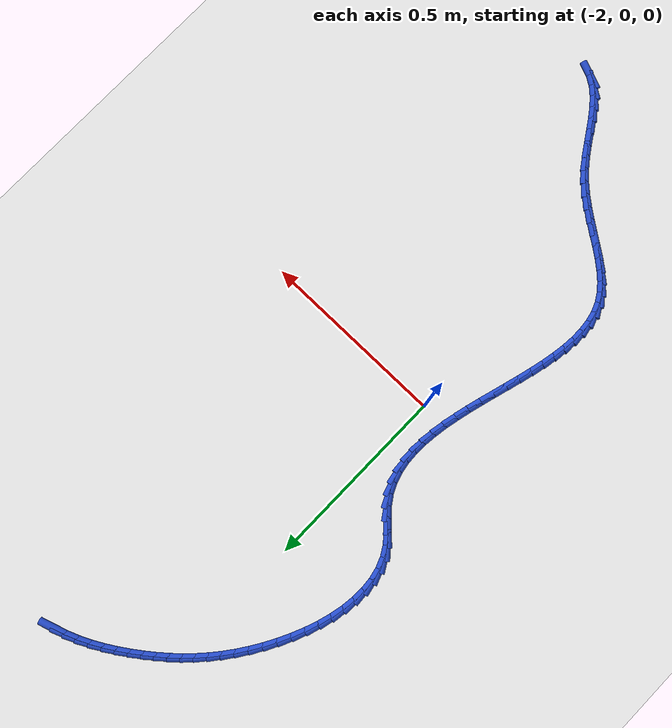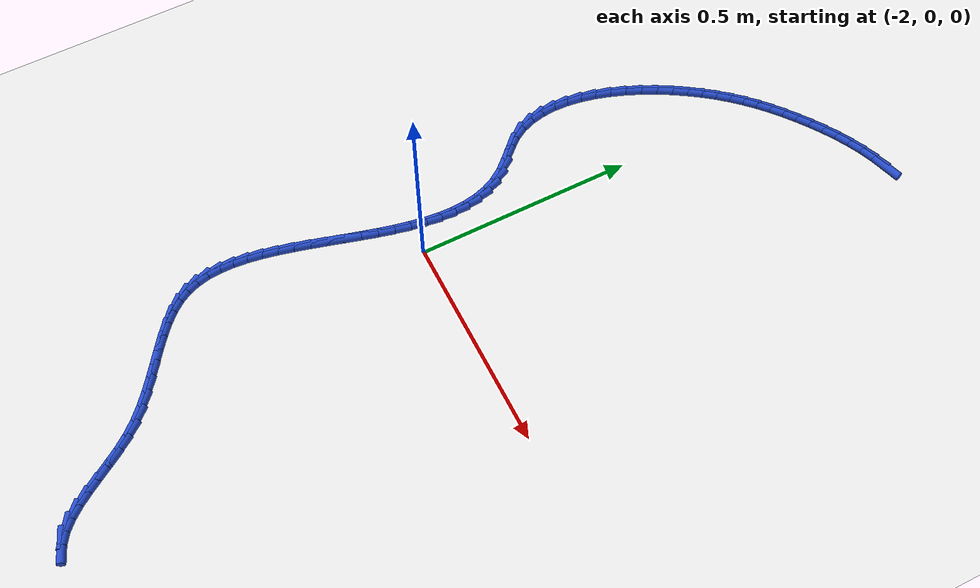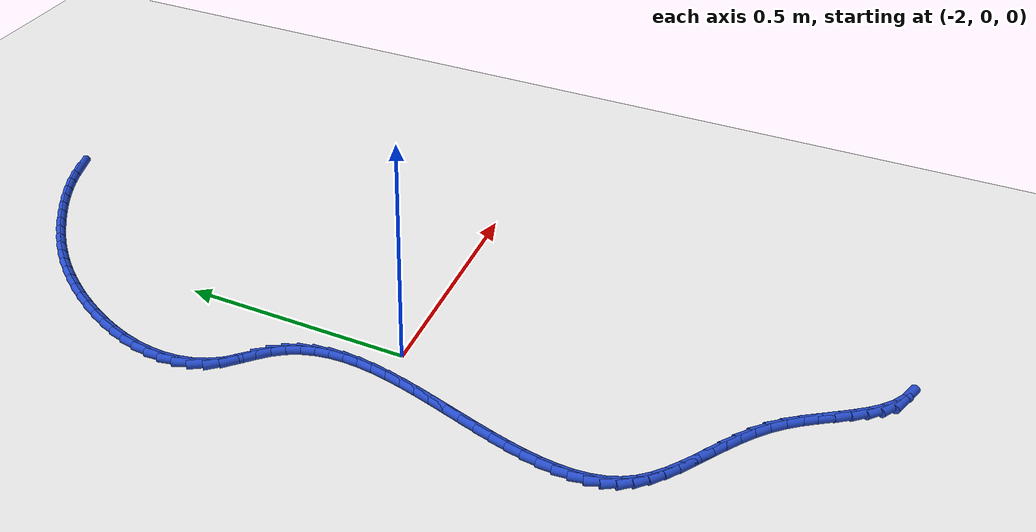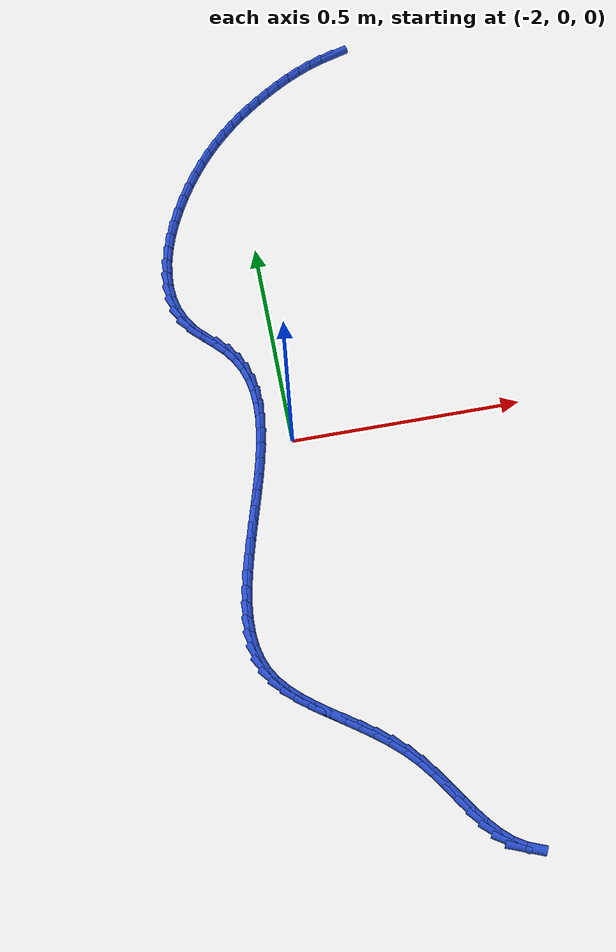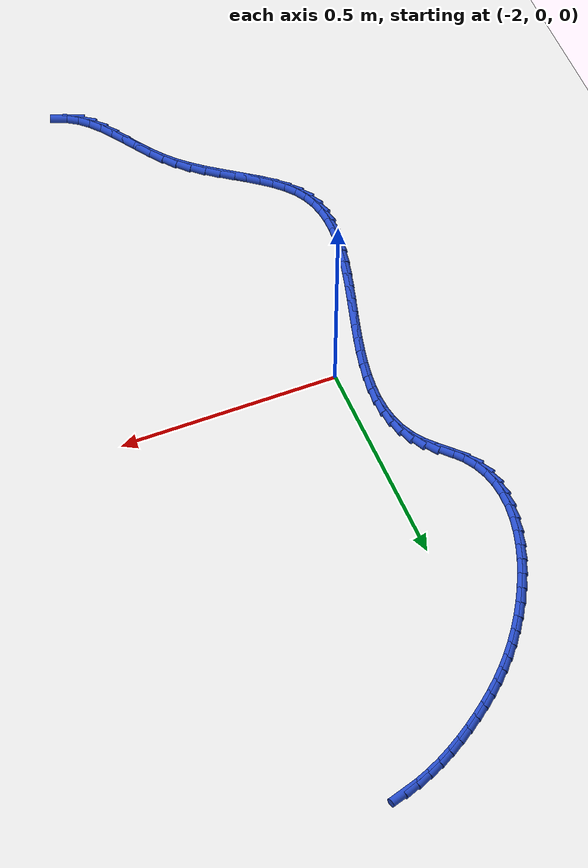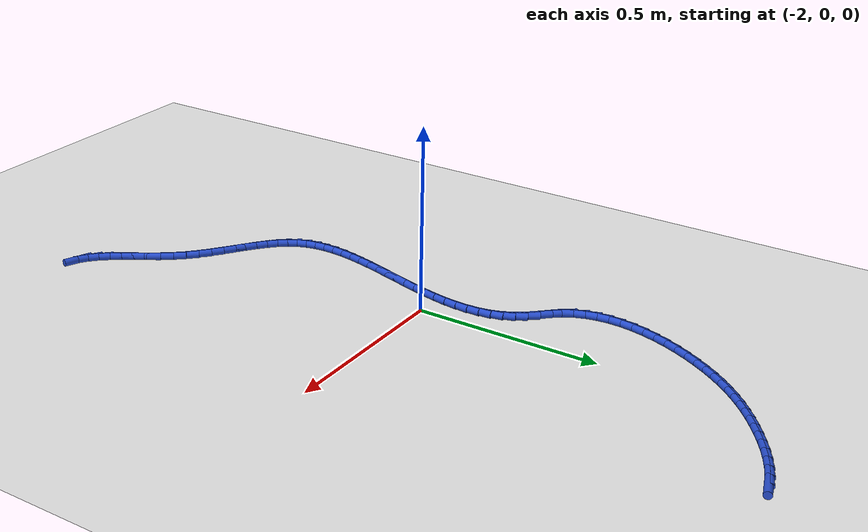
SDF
<sdf version="1.6">
 <world name="default">
  <model name="ground_plane">
   <static>1</static>
   <link name="link">
    <collision name="collision">
     <geometry><plane><normal>0 0 1</normal><size>100 100</size></plane></geometry>
     <surface><friction><ode><mu>100</mu><mu2>50</mu2></ode></friction></surface>
    </collision>
    <visual name="visual">
     <cast_shadows>0</cast_shadows>
     <geometry><plane><normal>0 0 1</normal><size>100 100</size></plane></geometry>
     <material>
      <script><uri>file://media/materials/scripts/gazebo.material</uri><name>Gazebo/WhiteGlow</name></script>
     </material>
    </visual>
   </link>
  </model>
  <model name="line">
   <link name="link_75">
    <pose>-1.722665146665327 1.0255204664261497 0.01 0 1.57 0.30716650345870583</pose>
    <collision name="collision">
     <geometry><cylinder><radius>0.01</radius><length>0.08</length></cylinder></geometry>
    </collision>
    <visual name="visual">
     <material>
      <script><name>Gazebo/Blue</name><uri>file://media/materials/scripts/gazebo.material</uri></script>
     </material>
     <geometry><cylinder><radius>0.01</radius><length>0.08</length></cylinder></geometry>
    </visual>
   </link>
   <link name="link_76">
    <pose>-1.7539561186742578 1.0155947795721028 0.01 0 1.57 0.3816026447308848</pose>
    <collision name="collision">
     <geometry><cylinder><radius>0.01</radius><length>0.08</length></cylinder></geometry>
    </collision>
    <visual name="visual">
     <material>
      <script><name>Gazebo/Blue</name><uri>file://media/materials/scripts/gazebo.material</uri></script>
     </material>
     <geometry><cylinder><radius>0.01</radius><length>0.08</length></cylinder></geometry>
    </visual>
   </link>
   <link name="link_77">
    <pose>-1.7847114089837033 1.0032535356813657 0.01 0 1.57 0.4462764927679804</pose>
    <collision name="collision">
     <geometry><cylinder><radius>0.01</radius><length>0.08</length></cylinder></geometry>
    </collision>
    <visual name="visual">
     <material>
      <script><name>Gazebo/Blue</name><uri>file://media/materials/scripts/gazebo.material</uri></script>
     </material>
     <geometry><cylinder><radius>0.01</radius><length>0.08</length></cylinder></geometry>
    </visual>
   </link>
   <link name="link_78">
    <pose>-1.814827324672753 0.9888439454595546 0.01 0 1.57 0.5022067671707312</pose>
    <collision name="collision">
     <geometry><cylinder><radius>0.01</radius><length>0.08</length></cylinder></geometry>
    </collision>
    <visual name="visual">
     <material>
      <script><name>Gazebo/Blue</name><uri>file://media/materials/scripts/gazebo.material</uri></script>
     </material>
     <geometry><cylinder><radius>0.01</radius><length>0.08</length></cylinder></geometry>
    </visual>
   </link>
   <link name="link_79">
    <pose>-1.8442001728204944 0.972713219612286 0.01 0 1.57 0.5503861017732643</pose>
    <collision name="collision">
     <geometry><cylinder><radius>0.01</radius><length>0.08</length></cylinder></geometry>
    </collision>
    <visual name="visual">
     <material>
      <script><name>Gazebo/Blue</name><uri>file://media/materials/scripts/gazebo.material</uri></script>
     </material>
     <geometry><cylinder><radius>0.01</radius><length>0.08</length></cylinder></geometry>
    </visual>
   </link>
   <link name="link_80">
    <pose>-1.8727262605060155 0.9552085688451755 0.01 0 1.57 0.5916992867368625</pose>
    <collision name="collision">
     <geometry><cylinder><radius>0.01</radius><length>0.08</length></cylinder></geometry>
    </collision>
    <visual name="visual">
     <material>
      <script><name>Gazebo/Blue</name><uri>file://media/materials/scripts/gazebo.material</uri></script>
     </material>
     <geometry><cylinder><radius>0.01</radius><length>0.08</length></cylinder></geometry>
    </visual>
   </link>
   <link name="link_81">
    <pose>-1.9003018948084052 0.9366772038638402 0.01 0 1.57 0.6269977439988782</pose>
    <collision name="collision">
     <geometry><cylinder><radius>0.01</radius><length>0.08</length></cylinder></geometry>
    </collision>
    <visual name="visual">
     <material>
      <script><name>Gazebo/Blue</name><uri>file://media/materials/scripts/gazebo.material</uri></script>
     </material>
     <geometry><cylinder><radius>0.01</radius><length>0.08</length></cylinder></geometry>
    </visual>
   </link>
   <link name="link_82">
    <pose>-1.9268252356797597 0.9174603410933847 0.01 0 1.57 0.6608972028955824</pose>
    <collision name="collision">
     <geometry><cylinder><radius>0.01</radius><length>0.08</length></cylinder></geometry>
    </collision>
    <visual name="visual">
     <material>
      <script><name>Gazebo/Blue</name><uri>file://media/materials/scripts/gazebo.material</uri></script>
     </material>
     <geometry><cylinder><radius>0.01</radius><length>0.08</length></cylinder></geometry>
    </visual>
   </link>
   <link name="link_83">
    <pose>-1.9522613865164233 0.8976826263781983 0.01 0 1.57 0.6984580550411562</pose>
    <collision name="collision">
     <geometry><cylinder><radius>0.01</radius><length>0.08</length></cylinder></geometry>
    </collision>
    <visual name="visual">
     <material>
      <script><name>Gazebo/Blue</name><uri>file://media/materials/scripts/gazebo.material</uri></script>
     </material>
     <geometry><cylinder><radius>0.01</radius><length>0.08</length></cylinder></geometry>
    </visual>
   </link>
   <link name="link_84">
    <pose>-1.9766595790859884 0.8771965395511918 0.01 0 1.57 0.739521287938739</pose>
    <collision name="collision">
     <geometry><cylinder><radius>0.01</radius><length>0.08</length></cylinder></geometry>
    </collision>
    <visual name="visual">
     <material>
      <script><name>Gazebo/Blue</name><uri>file://media/materials/scripts/gazebo.material</uri></script>
     </material>
     <geometry><cylinder><radius>0.01</radius><length>0.08</length></cylinder></geometry>
    </visual>
   </link>
   <link name="link_85">
    <pose>-2.0000743913646652 0.8558372647785014 0.01 0 1.57 0.7834212294628782</pose>
    <collision name="collision">
     <geometry><cylinder><radius>0.01</radius><length>0.08</length></cylinder></geometry>
    </collision>
    <visual name="visual">
     <material>
      <script><name>Gazebo/Blue</name><uri>file://media/materials/scripts/gazebo.material</uri></script>
     </material>
     <geometry><cylinder><radius>0.01</radius><length>0.08</length></cylinder></geometry>
    </visual>
   </link>
   <link name="link_86">
    <pose>-2.0225604013286613 0.8334399862262636 0.01 0 1.57 0.8293474978991886</pose>
    <collision name="collision">
     <geometry><cylinder><radius>0.01</radius><length>0.08</length></cylinder></geometry>
    </collision>
    <visual name="visual">
     <material>
      <script><name>Gazebo/Blue</name><uri>file://media/materials/scripts/gazebo.material</uri></script>
     </material>
     <geometry><cylinder><radius>0.01</radius><length>0.08</length></cylinder></geometry>
    </visual>
   </link>
   <link name="link_87">
    <pose>-2.0441721869541865 0.8098398880606145 0.01 0 1.57 0.8763962838934419</pose>
    <collision name="collision">
     <geometry><cylinder><radius>0.01</radius><length>0.08</length></cylinder></geometry>
    </collision>
    <visual name="visual">
     <material>
      <script><name>Gazebo/Blue</name><uri>file://media/materials/scripts/gazebo.material</uri></script>
     </material>
     <geometry><cylinder><radius>0.01</radius><length>0.08</length></cylinder></geometry>
    </visual>
   </link>
   <link name="link_88">
    <pose>-2.0649643262174475 0.7848721544476905 0.01 0 1.57 0.9236360238138938</pose>
    <collision name="collision">
     <geometry><cylinder><radius>0.01</radius><length>0.08</length></cylinder></geometry>
    </collision>
    <visual name="visual">
     <material>
      <script><name>Gazebo/Blue</name><uri>file://media/materials/scripts/gazebo.material</uri></script>
     </material>
     <geometry><cylinder><radius>0.01</radius><length>0.08</length></cylinder></geometry>
    </visual>
   </link>
   <link name="link_89">
    <pose>-2.084991397094655 0.7583719695536281 0.01 0 1.57 0.9701765728772763</pose>
    <collision name="collision">
     <geometry><cylinder><radius>0.01</radius><length>0.08</length></cylinder></geometry>
    </collision>
    <visual name="visual">
     <material>
      <script><name>Gazebo/Blue</name><uri>file://media/materials/scripts/gazebo.material</uri></script>
     </material>
     <geometry><cylinder><radius>0.01</radius><length>0.08</length></cylinder></geometry>
    </visual>
   </link>
   <link name="link_90">
    <pose>-2.1043079775620157 0.7301745175445635 0.01 0 1.57 1.0155635734805928</pose>
    <collision name="collision">
     <geometry><cylinder><radius>0.01</radius><length>0.08</length></cylinder></geometry>
    </collision>
    <visual name="visual">
     <material>
      <script><name>Gazebo/Blue</name><uri>file://media/materials/scripts/gazebo.material</uri></script>
     </material>
     <geometry><cylinder><radius>0.01</radius><length>0.08</length></cylinder></geometry>
    </visual>
   </link>
   <link name="link_91">
    <pose>-2.122907432287517 0.7001912681688248 0.01 0 1.57 1.0613847610718397</pose>
    <collision name="collision">
     <geometry><cylinder><radius>0.01</radius><length>0.08</length></cylinder></geometry>
    </collision>
    <visual name="visual">
     <material>
      <script><name>Gazebo/Blue</name><uri>file://media/materials/scripts/gazebo.material</uri></script>
     </material>
     <geometry><cylinder><radius>0.01</radius><length>0.08</length></cylinder></geometry>
    </visual>
   </link>
   <link name="link_92">
    <pose>-2.1405182686418223 0.6686637630775818 0.01 0 1.57 1.1093839071369096</pose>
    <collision name="collision">
     <geometry><cylinder><radius>0.01</radius><length>0.08</length></cylinder></geometry>
    </collision>
    <visual name="visual">
     <material>
      <script><name>Gazebo/Blue</name><uri>file://media/materials/scripts/gazebo.material</uri></script>
     </material>
     <geometry><cylinder><radius>0.01</radius><length>0.08</length></cylinder></geometry>
    </visual>
   </link>
   <link name="link_93">
    <pose>-2.156797376733087 0.635922795176738 0.01 0 1.57 1.161036820752491</pose>
    <collision name="collision">
     <geometry><cylinder><radius>0.01</radius><length>0.08</length></cylinder></geometry>
    </collision>
    <visual name="visual">
     <material>
      <script><name>Gazebo/Blue</name><uri>file://media/materials/scripts/gazebo.material</uri></script>
     </material>
     <geometry><cylinder><radius>0.01</radius><length>0.08</length></cylinder></geometry>
    </visual>
   </link>
   <link name="link_94">
    <pose>-2.171401645481911 0.6022991588521608 0.01 0 1.57 1.217925981890829</pose>
    <collision name="collision">
     <geometry><cylinder><radius>0.01</radius><length>0.08</length></cylinder></geometry>
    </collision>
    <visual name="visual">
     <material>
      <script><name>Gazebo/Blue</name><uri>file://media/materials/scripts/gazebo.material</uri></script>
     </material>
     <geometry><cylinder><radius>0.01</radius><length>0.08</length></cylinder></geometry>
    </visual>
   </link>
   <link name="link_95">
    <pose>-2.1839879638088946 0.5681236484897164 0.01 0 1.57 1.2818411222478872</pose>
    <collision name="collision">
     <geometry><cylinder><radius>0.01</radius><length>0.08</length></cylinder></geometry>
    </collision>
    <visual name="visual">
     <material>
      <script><name>Gazebo/Blue</name><uri>file://media/materials/scripts/gazebo.material</uri></script>
     </material>
     <geometry><cylinder><radius>0.01</radius><length>0.08</length></cylinder></geometry>
    </visual>
   </link>
   <link name="link_96">
    <pose>-2.194213220634638 0.5337270584752729 0.01 0 1.57 1.3548589151426704</pose>
    <collision name="collision">
     <geometry><cylinder><radius>0.01</radius><length>0.08</length></cylinder></geometry>
    </collision>
    <visual name="visual">
     <material>
      <script><name>Gazebo/Blue</name><uri>file://media/materials/scripts/gazebo.material</uri></script>
     </material>
     <geometry><cylinder><radius>0.01</radius><length>0.08</length></cylinder></geometry>
    </visual>
   </link>
   <link name="link_97">
    <pose>-2.20173430487974 0.49944018319469663 0.01 0 1.57 1.439378504214061</pose>
    <collision name="collision">
     <geometry><cylinder><radius>0.01</radius><length>0.08</length></cylinder></geometry>
    </collision>
    <visual name="visual">
     <material>
      <script><name>Gazebo/Blue</name><uri>file://media/materials/scripts/gazebo.material</uri></script>
     </material>
     <geometry><cylinder><radius>0.01</radius><length>0.08</length></cylinder></geometry>
    </visual>
   </link>
   <link name="link_98">
    <pose>-2.206208105464802 0.46559381703385416 0.01 0 1.57 1.538052061887</pose>
    <collision name="collision">
     <geometry><cylinder><radius>0.01</radius><length>0.08</length></cylinder></geometry>
    </collision>
    <visual name="visual">
     <material>
      <script><name>Gazebo/Blue</name><uri>file://media/materials/scripts/gazebo.material</uri></script>
     </material>
     <geometry><cylinder><radius>0.01</radius><length>0.08</length></cylinder></geometry>
    </visual>
   </link>
   <link name="link_99">
    <pose>-2.207291511310423 0.4325187543786133 0.01 0 1.57 -1.488099707014787</pose>
    <collision name="collision">
     <geometry><cylinder><radius>0.01</radius><length>0.08</length></cylinder></geometry>
    </collision>
    <visual name="visual">
     <material>
      <script><name>Gazebo/Blue</name><uri>file://media/materials/scripts/gazebo.material</uri></script>
     </material>
     <geometry><cylinder><radius>0.01</radius><length>0.08</length></cylinder></geometry>
    </visual>
   </link>
   <link name="link_100">
    <pose>-2.204641411337203 0.40054578961484033 0.01 0 1.57 -1.3539992717696983</pose>
    <collision name="collision">
     <geometry><cylinder><radius>0.01</radius><length>0.08</length></cylinder></geometry>
    </collision>
    <visual name="visual">
     <material>
      <script><name>Gazebo/Blue</name><uri>file://media/materials/scripts/gazebo.material</uri></script>
     </material>
     <geometry><cylinder><radius>0.01</radius><length>0.08</length></cylinder></geometry>
    </visual>
   </link>
   <link name="link_101">
    <pose>-2.1979146944657426 0.370005717128403 0.01 0 1.57 -1.2012451267774784</pose>
    <collision name="collision">
     <geometry><cylinder><radius>0.01</radius><length>0.08</length></cylinder></geometry>
    </collision>
    <visual name="visual">
     <material>
      <script><name>Gazebo/Blue</name><uri>file://media/materials/scripts/gazebo.material</uri></script>
     </material>
     <geometry><cylinder><radius>0.01</radius><length>0.08</length></cylinder></geometry>
    </visual>
   </link>
   <link name="link_102">
    <pose>-2.186768249616641 0.34122933130516736 0.01 0 1.57 -1.0331332622164098</pose>
    <collision name="collision">
     <geometry><cylinder><radius>0.01</radius><length>0.08</length></cylinder></geometry>
    </collision>
    <visual name="visual">
     <material>
      <script><name>Gazebo/Blue</name><uri>file://media/materials/scripts/gazebo.material</uri></script>
     </material>
     <geometry><cylinder><radius>0.01</radius><length>0.08</length></cylinder></geometry>
    </visual>
   </link>
   <link name="link_103">
    <pose>-2.170858965710498 0.3145474265310012 0.01 0 1.57 -0.8694812097916806</pose>
    <collision name="collision">
     <geometry><cylinder><radius>0.01</radius><length>0.08</length></cylinder></geometry>
    </collision>
    <visual name="visual">
     <material>
      <script><name>Gazebo/Blue</name><uri>file://media/materials/scripts/gazebo.material</uri></script>
     </material>
     <geometry><cylinder><radius>0.01</radius><length>0.08</length></cylinder></geometry>
    </visual>
   </link>
   <link name="link_104">
    <pose>-2.150217253999051 0.29010603106832605 0.01 0 1.57 -0.7940354604362623</pose>
    <collision name="collision">
     <geometry><cylinder><radius>0.01</radius><length>0.08</length></cylinder></geometry>
    </collision>
    <visual name="visual">
     <material>
      <script><name>Gazebo/Blue</name><uri>file://media/materials/scripts/gazebo.material</uri></script>
     </material>
     <geometry><cylinder><radius>0.01</radius><length>0.08</length></cylinder></geometry>
    </visual>
   </link>
   <link name="link_105">
    <pose>-2.127340648934138 0.2668307888765559 0.01 0 1.57 -0.8309590845335622</pose>
    <collision name="collision">
     <geometry><cylinder><radius>0.01</radius><length>0.08</length></cylinder></geometry>
    </collision>
    <visual name="visual">
     <material>
      <script><name>Gazebo/Blue</name><uri>file://media/materials/scripts/gazebo.material</uri></script>
     </material>
     <geometry><cylinder><radius>0.01</radius><length>0.08</length></cylinder></geometry>
    </visual>
   </link>
   <link name="link_106">
    <pose>-2.105727236799459 0.2431524121054936 0.01 0 1.57 -0.9688594317832032</pose>
    <collision name="collision">
     <geometry><cylinder><radius>0.01</radius><length>0.08</length></cylinder></geometry>
    </collision>
    <visual name="visual">
     <material>
      <script><name>Gazebo/Blue</name><uri>file://media/materials/scripts/gazebo.material</uri></script>
     </material>
     <geometry><cylinder><radius>0.01</radius><length>0.08</length></cylinder></geometry>
    </visual>
   </link>
   <link name="link_107">
    <pose>-2.088286539355656 0.21776507167885265 0.01 0 1.57 -1.1269484979885172</pose>
    <collision name="collision">
     <geometry><cylinder><radius>0.01</radius><length>0.08</length></cylinder></geometry>
    </collision>
    <visual name="visual">
     <material>
      <script><name>Gazebo/Blue</name><uri>file://media/materials/scripts/gazebo.material</uri></script>
     </material>
     <geometry><cylinder><radius>0.01</radius><length>0.08</length></cylinder></geometry>
    </visual>
   </link>
   <link name="link_108">
    <pose>-2.075334023995312 0.19052470286868495 0.01 0 1.57 -1.2735072632188693</pose>
    <collision name="collision">
     <geometry><cylinder><radius>0.01</radius><length>0.08</length></cylinder></geometry>
    </collision>
    <visual name="visual">
     <material>
      <script><name>Gazebo/Blue</name><uri>file://media/materials/scripts/gazebo.material</uri></script>
     </material>
     <geometry><cylinder><radius>0.01</radius><length>0.08</length></cylinder></geometry>
    </visual>
   </link>
   <link name="link_109">
    <pose>-2.0664741470952768 0.1616056719173152 0.01 0 1.57 -1.4026989168364563</pose>
    <collision name="collision">
     <geometry><cylinder><radius>0.01</radius><length>0.08</length></cylinder></geometry>
    </collision>
    <visual name="visual">
     <material>
      <script><name>Gazebo/Blue</name><uri>file://media/materials/scripts/gazebo.material</uri></script>
     </material>
     <geometry><cylinder><radius>0.01</radius><length>0.08</length></cylinder></geometry>
    </visual>
   </link>
   <link name="link_110">
    <pose>-2.06131134623995 0.13118235348338927 0.01 0 1.57 -1.5122460705456118</pose>
    <collision name="collision">
     <geometry><cylinder><radius>0.01</radius><length>0.08</length></cylinder></geometry>
    </collision>
    <visual name="visual">
     <material>
      <script><name>Gazebo/Blue</name><uri>file://media/materials/scripts/gazebo.material</uri></script>
     </material>
     <geometry><cylinder><radius>0.01</radius><length>0.08</length></cylinder></geometry>
    </visual>
   </link>
   <link name="link_111">
    <pose>-2.0594500590137312 0.0994291222255546 0.01 0 1.57 1.5390627397899685</pose>
    <collision name="collision">
     <geometry><cylinder><radius>0.01</radius><length>0.08</length></cylinder></geometry>
    </collision>
    <visual name="visual">
     <material>
      <script><name>Gazebo/Blue</name><uri>file://media/materials/scripts/gazebo.material</uri></script>
     </material>
     <geometry><cylinder><radius>0.01</radius><length>0.08</length></cylinder></geometry>
    </visual>
   </link>
   <link name="link_112">
    <pose>-2.0604947230010207 0.06652035280245731 0.01 0 1.57 1.466278614126059</pose>
    <collision name="collision">
     <geometry><cylinder><radius>0.01</radius><length>0.08</length></cylinder></geometry>
    </collision>
    <visual name="visual">
     <material>
      <script><name>Gazebo/Blue</name><uri>file://media/materials/scripts/gazebo.material</uri></script>
     </material>
     <geometry><cylinder><radius>0.01</radius><length>0.08</length></cylinder></geometry>
    </visual>
   </link>
   <link name="link_113">
    <pose>-2.064049775786217 0.03263041987274411 0.01 0 1.57 1.4088154952620826</pose>
    <collision name="collision">
     <geometry><cylinder><radius>0.01</radius><length>0.08</length></cylinder></geometry>
    </collision>
    <visual name="visual">
     <material>
      <script><name>Gazebo/Blue</name><uri>file://media/materials/scripts/gazebo.material</uri></script>
     </material>
     <geometry><cylinder><radius>0.01</radius><length>0.08</length></cylinder></geometry>
    </visual>
   </link>
   <link name="link_114">
    <pose>-2.0697196549537202 -0.0020663019049392724 0.01 0 1.57 1.3646168960380514</pose>
    <collision name="collision">
     <geometry><cylinder><radius>0.01</radius><length>0.08</length></cylinder></geometry>
    </collision>
    <visual name="visual">
     <material>
      <script><name>Gazebo/Blue</name><uri>file://media/materials/scripts/gazebo.material</uri></script>
     </material>
     <geometry><cylinder><radius>0.01</radius><length>0.08</length></cylinder></geometry>
    </visual>
   </link>
   <link name="link_115">
    <pose>-2.0771087980879304 -0.03739543787194454 0.01 0 1.57 1.3319797562607292</pose>
    <collision name="collision">
     <geometry><cylinder><radius>0.01</radius><length>0.08</length></cylinder></geometry>
    </collision>
    <visual name="visual">
     <material>
      <script><name>Gazebo/Blue</name><uri>file://media/materials/scripts/gazebo.material</uri></script>
     </material>
     <geometry><cylinder><radius>0.01</radius><length>0.08</length></cylinder></geometry>
    </visual>
   </link>
   <link name="link_116">
    <pose>-2.0858216427732463 -0.07318261336962598 0.01 0 1.57 1.309622194842389</pose>
    <collision name="collision">
     <geometry><cylinder><radius>0.01</radius><length>0.08</length></cylinder></geometry>
    </collision>
    <visual name="visual">
     <material>
      <script><name>Gazebo/Blue</name><uri>file://media/materials/scripts/gazebo.material</uri></script>
     </material>
     <geometry><cylinder><radius>0.01</radius><length>0.08</length></cylinder></geometry>
    </visual>
   </link>
   <link name="link_117">
    <pose>-2.095462626594068 -0.10925345373933688 0.01 0 1.57 1.2966826950406185</pose>
    <collision name="collision">
     <geometry><cylinder><radius>0.01</radius><length>0.08</length></cylinder></geometry>
    </collision>
    <visual name="visual">
     <material>
      <script><name>Gazebo/Blue</name><uri>file://media/materials/scripts/gazebo.material</uri></script>
     </material>
     <geometry><cylinder><radius>0.01</radius><length>0.08</length></cylinder></geometry>
    </visual>
   </link>
   <link name="link_118">
    <pose>-2.1056361871347957 -0.14543358432243153 0.01 0 1.57 1.292701726060498</pose>
    <collision name="collision">
     <geometry><cylinder><radius>0.01</radius><length>0.08</length></cylinder></geometry>
    </collision>
    <visual name="visual">
     <material>
      <script><name>Gazebo/Blue</name><uri>file://media/materials/scripts/gazebo.material</uri></script>
     </material>
     <geometry><cylinder><radius>0.01</radius><length>0.08</length></cylinder></geometry>
    </visual>
   </link>
   <link name="link_119">
    <pose>-2.115946761979828 -0.18154863046026154 0.01 0 1.57 1.2976102565135412</pose>
    <collision name="collision">
     <geometry><cylinder><radius>0.01</radius><length>0.08</length></cylinder></geometry>
    </collision>
    <visual name="visual">
     <material>
      <script><name>Gazebo/Blue</name><uri>file://media/materials/scripts/gazebo.material</uri></script>
     </material>
     <geometry><cylinder><radius>0.01</radius><length>0.08</length></cylinder></geometry>
    </visual>
   </link>
   <link name="link_120">
    <pose>-2.1259987887135647 -0.21742421749418125 0.01 0 1.57 1.311736062499699</pose>
    <collision name="collision">
     <geometry><cylinder><radius>0.01</radius><length>0.08</length></cylinder></geometry>
    </collision>
    <visual name="visual">
     <material>
      <script><name>Gazebo/Blue</name><uri>file://media/materials/scripts/gazebo.material</uri></script>
     </material>
     <geometry><cylinder><radius>0.01</radius><length>0.08</length></cylinder></geometry>
    </visual>
   </link>
   <link name="link_121">
    <pose>-2.1353967049204057 -0.25288597076554403 0.01 0 1.57 1.335831854948132</pose>
    <collision name="collision">
     <geometry><cylinder><radius>0.01</radius><length>0.08</length></cylinder></geometry>
    </collision>
    <visual name="visual">
     <material>
      <script><name>Gazebo/Blue</name><uri>file://media/materials/scripts/gazebo.material</uri></script>
     </material>
     <geometry><cylinder><radius>0.01</radius><length>0.08</length></cylinder></geometry>
    </visual>
   </link>
   <link name="link_122">
    <pose>-2.143744948184751 -0.28775951561570406 0.01 0 1.57 1.3711237353103911</pose>
    <collision name="collision">
     <geometry><cylinder><radius>0.01</radius><length>0.08</length></cylinder></geometry>
    </collision>
    <visual name="visual">
     <material>
      <script><name>Gazebo/Blue</name><uri>file://media/materials/scripts/gazebo.material</uri></script>
     </material>
     <geometry><cylinder><radius>0.01</radius><length>0.08</length></cylinder></geometry>
    </visual>
   </link>
   <link name="link_123">
    <pose>-2.1506479560909995 -0.32187047738601304 0.01 0 1.57 1.4193687759245506</pose>
    <collision name="collision">
     <geometry><cylinder><radius>0.01</radius><length>0.08</length></cylinder></geometry>
    </collision>
    <visual name="visual">
     <material>
      <script><name>Gazebo/Blue</name><uri>file://media/materials/scripts/gazebo.material</uri></script>
     </material>
     <geometry><cylinder><radius>0.01</radius><length>0.08</length></cylinder></geometry>
    </visual>
   </link>
   <link name="link_124">
    <pose>-2.155710166223551 -0.35504448141782535 0.01 0 1.57 1.482888276041716</pose>
    <collision name="collision">
     <geometry><cylinder><radius>0.01</radius><length>0.08</length></cylinder></geometry>
    </collision>
    <visual name="visual">
     <material>
      <script><name>Gazebo/Blue</name><uri>file://media/materials/scripts/gazebo.material</uri></script>
     </material>
     <geometry><cylinder><radius>0.01</radius><length>0.08</length></cylinder></geometry>
    </visual>
   </link>
   <link name="link_125">
    <pose>-2.1585360161668055 -0.3871071530524941 0.01 0 1.57 1.5644953554498056</pose>
    <collision name="collision">
     <geometry><cylinder><radius>0.01</radius><length>0.08</length></cylinder></geometry>
    </collision>
    <visual name="visual">
     <material>
      <script><name>Gazebo/Blue</name><uri>file://media/materials/scripts/gazebo.material</uri></script>
     </material>
     <geometry><cylinder><radius>0.01</radius><length>0.08</length></cylinder></geometry>
    </visual>
   </link>
   <link name="link_126">
    <pose>-2.1587299435051626 -0.4178841176313738 0.01 0 1.57 -1.4744428585500637</pose>
    <collision name="collision">
     <geometry><cylinder><radius>0.01</radius><length>0.08</length></cylinder></geometry>
    </collision>
    <visual name="visual">
     <material>
      <script><name>Gazebo/Blue</name><uri>file://media/materials/scripts/gazebo.material</uri></script>
     </material>
     <geometry><cylinder><radius>0.01</radius><length>0.08</length></cylinder></geometry>
    </visual>
   </link>
   <link name="link_127">
    <pose>-2.155896385823021 -0.4472010004958159 0.01 0 1.57 -1.3485173264511143</pose>
    <collision name="collision">
     <geometry><cylinder><radius>0.01</radius><length>0.08</length></cylinder></geometry>
    </collision>
    <visual name="visual">
     <material>
      <script><name>Gazebo/Blue</name><uri>file://media/materials/scripts/gazebo.material</uri></script>
     </material>
     <geometry><cylinder><radius>0.01</radius><length>0.08</length></cylinder></geometry>
    </visual>
   </link>
   <link name="link_128">
    <pose>-2.1496397807047813 -0.47488342698717495 0.01 0 1.57 -1.1994599085066024</pose>
    <collision name="collision">
     <geometry><cylinder><radius>0.01</radius><length>0.08</length></cylinder></geometry>
    </collision>
    <visual name="visual">
     <material>
      <script><name>Gazebo/Blue</name><uri>file://media/materials/scripts/gazebo.material</uri></script>
     </material>
     <geometry><cylinder><radius>0.01</radius><length>0.08</length></cylinder></geometry>
    </visual>
   </link>
   <link name="link_129">
    <pose>-2.1395645657348425 -0.5007570224468041 0.01 0 1.57 -1.0335094156013493</pose>
    <collision name="collision">
     <geometry><cylinder><radius>0.01</radius><length>0.08</length></cylinder></geometry>
    </collision>
    <visual name="visual">
     <material>
      <script><name>Gazebo/Blue</name><uri>file://media/materials/scripts/gazebo.material</uri></script>
     </material>
     <geometry><cylinder><radius>0.01</radius><length>0.08</length></cylinder></geometry>
    </visual>
   </link>
   <link name="link_130">
    <pose>-2.125317571305866 -0.5246715007511599 0.01 0 1.57 -0.8831919119060845</pose>
    <collision name="collision">
     <geometry><cylinder><radius>0.01</radius><length>0.08</length></cylinder></geometry>
    </collision>
    <visual name="visual">
     <material>
      <script><name>Gazebo/Blue</name><uri>file://media/materials/scripts/gazebo.material</uri></script>
     </material>
     <geometry><cylinder><radius>0.01</radius><length>0.08</length></cylinder></geometry>
    </visual>
   </link>
   <link name="link_131">
    <pose>-2.1071340769218203 -0.546810945629882 0.01 0 1.57 -0.7697554510832745</pose>
    <collision name="collision">
     <geometry><cylinder><radius>0.01</radius><length>0.08</length></cylinder></geometry>
    </collision>
    <visual name="visual">
     <material>
      <script><name>Gazebo/Blue</name><uri>file://media/materials/scripts/gazebo.material</uri></script>
     </material>
     <geometry><cylinder><radius>0.01</radius><length>0.08</length></cylinder></geometry>
    </visual>
   </link>
   <link name="link_132">
    <pose>-2.0856799794502123 -0.5676041271616175 0.01 0 1.57 -0.690811394234867</pose>
    <collision name="collision">
     <geometry><cylinder><radius>0.01</radius><length>0.08</length></cylinder></geometry>
    </collision>
    <visual name="visual">
     <material>
      <script><name>Gazebo/Blue</name><uri>file://media/materials/scripts/gazebo.material</uri></script>
     </material>
     <geometry><cylinder><radius>0.01</radius><length>0.08</length></cylinder></geometry>
    </visual>
   </link>
   <link name="link_133">
    <pose>-2.061631034131792 -0.5874854171716232 0.01 0 1.57 -0.6417178780537242</pose>
    <collision name="collision">
     <geometry><cylinder><radius>0.01</radius><length>0.08</length></cylinder></geometry>
    </collision>
    <visual name="visual">
     <material>
      <script><name>Gazebo/Blue</name><uri>file://media/materials/scripts/gazebo.material</uri></script>
     </material>
     <geometry><cylinder><radius>0.01</radius><length>0.08</length></cylinder></geometry>
    </visual>
   </link>
   <link name="link_134">
    <pose>-2.035662996207308 -0.6068891874851566 0.01 0 1.57 -0.618395846100841</pose>
    <collision name="collision">
     <geometry><cylinder><radius>0.01</radius><length>0.08</length></cylinder></geometry>
    </collision>
    <visual name="visual">
     <material>
      <script><name>Gazebo/Blue</name><uri>file://media/materials/scripts/gazebo.material</uri></script>
     </material>
     <geometry><cylinder><radius>0.01</radius><length>0.08</length></cylinder></geometry>
    </visual>
   </link>
   <link name="link_135">
    <pose>-2.008451620917509 -0.6262498099274747 0.01 0 1.57 -0.6180945214462675</pose>
    <collision name="collision">
     <geometry><cylinder><radius>0.01</radius><length>0.08</length></cylinder></geometry>
    </collision>
    <visual name="visual">
     <material>
      <script><name>Gazebo/Blue</name><uri>file://media/materials/scripts/gazebo.material</uri></script>
     </material>
     <geometry><cylinder><radius>0.01</radius><length>0.08</length></cylinder></geometry>
    </visual>
   </link>
   <link name="link_136">
    <pose>-1.9806726635031453 -0.6460016563238334 0.01 0 1.57 -0.639426182519638</pose>
    <collision name="collision">
     <geometry><cylinder><radius>0.01</radius><length>0.08</length></cylinder></geometry>
    </collision>
    <visual name="visual">
     <material>
      <script><name>Gazebo/Blue</name><uri>file://media/materials/scripts/gazebo.material</uri></script>
     </material>
     <geometry><cylinder><radius>0.01</radius><length>0.08</length></cylinder></geometry>
    </visual>
   </link>
   <link name="link_137">
    <pose>-1.9530018792049668 -0.6665790984994904 0.01 0 1.57 -0.6821337021429816</pose>
    <collision name="collision">
     <geometry><cylinder><radius>0.01</radius><length>0.08</length></cylinder></geometry>
    </collision>
    <visual name="visual">
     <material>
      <script><name>Gazebo/Blue</name><uri>file://media/materials/scripts/gazebo.material</uri></script>
     </material>
     <geometry><cylinder><radius>0.01</radius><length>0.08</length></cylinder></geometry>
    </visual>
   </link>
   <link name="link_138">
    <pose>-1.9261150232637214 -0.688416508279702 0.01 0 1.57 -0.7467029274763449</pose>
    <collision name="collision">
     <geometry><cylinder><radius>0.01</radius><length>0.08</length></cylinder></geometry>
    </collision>
    <visual name="visual">
     <material>
      <script><name>Gazebo/Blue</name><uri>file://media/materials/scripts/gazebo.material</uri></script>
     </material>
     <geometry><cylinder><radius>0.01</radius><length>0.08</length></cylinder></geometry>
    </visual>
   </link>
   <link name="link_139">
    <pose>-1.9006878509201592 -0.7119482574897262 0.01 0 1.57 -0.8329484585496529</pose>
    <collision name="collision">
     <geometry><cylinder><radius>0.01</radius><length>0.08</length></cylinder></geometry>
    </collision>
    <visual name="visual">
     <material>
      <script><name>Gazebo/Blue</name><uri>file://media/materials/scripts/gazebo.material</uri></script>
     </material>
     <geometry><cylinder><radius>0.01</radius><length>0.08</length></cylinder></geometry>
    </visual>
   </link>
   <link name="link_140">
    <pose>-1.8773765897100583 -0.7375889546765582 0.01 0 1.57 -0.9167778265037275</pose>
    <collision name="collision">
     <geometry><cylinder><radius>0.01</radius><length>0.08</length></cylinder></geometry>
    </collision>
    <visual name="visual">
     <material>
      <script><name>Gazebo/Blue</name><uri>file://media/materials/scripts/gazebo.material</uri></script>
     </material>
     <geometry><cylinder><radius>0.01</radius><length>0.08</length></cylinder></geometry>
    </visual>
   </link>
   <link name="link_141">
    <pose>-1.8562458504934833 -0.7651544547188646 0.01 0 1.57 -0.9709599043831872</pose>
    <collision name="collision">
     <geometry><cylinder><radius>0.01</radius><length>0.08</length></cylinder></geometry>
    </collision>
    <visual name="visual">
     <material>
      <script><name>Gazebo/Blue</name><uri>file://media/materials/scripts/gazebo.material</uri></script>
     </material>
     <geometry><cylinder><radius>0.01</radius><length>0.08</length></cylinder></geometry>
    </visual>
   </link>
   <link name="link_142">
    <pose>-1.8366766284755327 -0.7937687500141798 0.01 0 1.57 -0.9949547720453952</pose>
    <collision name="collision">
     <geometry><cylinder><radius>0.01</radius><length>0.08</length></cylinder></geometry>
    </collision>
    <visual name="visual">
     <material>
      <script><name>Gazebo/Blue</name><uri>file://media/materials/scripts/gazebo.material</uri></script>
     </material>
     <geometry><cylinder><radius>0.01</radius><length>0.08</length></cylinder></geometry>
    </visual>
   </link>
   <link name="link_143">
    <pose>-1.8180118707790631 -0.822517325883158 0.01 0 1.57 -0.9884640813108764</pose>
    <collision name="collision">
     <geometry><cylinder><radius>0.01</radius><length>0.08</length></cylinder></geometry>
    </collision>
    <visual name="visual">
     <material>
      <script><name>Gazebo/Blue</name><uri>file://media/materials/scripts/gazebo.material</uri></script>
     </material>
     <geometry><cylinder><radius>0.01</radius><length>0.08</length></cylinder></geometry>
    </visual>
   </link>
   <link name="link_144">
    <pose>-1.7995945245269305 -0.8504856676464497 0.01 0 1.57 -0.9490329100567082</pose>
    <collision name="collision">
     <geometry><cylinder><radius>0.01</radius><length>0.08</length></cylinder></geometry>
    </collision>
    <visual name="visual">
     <material>
      <script><name>Gazebo/Blue</name><uri>file://media/materials/scripts/gazebo.material</uri></script>
     </material>
     <geometry><cylinder><radius>0.01</radius><length>0.08</length></cylinder></geometry>
    </visual>
   </link>
   <link name="link_145">
    <pose>-1.7807675368419904 -0.8767592606247088 0.01 0 1.57 -0.8717490050140235</pose>
    <collision name="collision">
     <geometry><cylinder><radius>0.01</radius><length>0.08</length></cylinder></geometry>
    </collision>
    <visual name="visual">
     <material>
      <script><name>Gazebo/Blue</name><uri>file://media/materials/scripts/gazebo.material</uri></script>
     </material>
     <geometry><cylinder><radius>0.01</radius><length>0.08</length></cylinder></geometry>
    </visual>
   </link>
   <link name="link_146">
    <pose>-1.7608738548470992 -0.900423590138588 0.01 0 1.57 -0.7500453407062834</pose>
    <collision name="collision">
     <geometry><cylinder><radius>0.01</radius><length>0.08</length></cylinder></geometry>
    </collision>
    <visual name="visual">
     <material>
      <script><name>Gazebo/Blue</name><uri>file://media/materials/scripts/gazebo.material</uri></script>
     </material>
     <geometry><cylinder><radius>0.01</radius><length>0.08</length></cylinder></geometry>
    </visual>
   </link>
   <link name="link_147">
    <pose>-1.7392564256651124 -0.9205641415087396 0.01 0 1.57 -0.5794069549803453</pose>
    <collision name="collision">
     <geometry><cylinder><radius>0.01</radius><length>0.08</length></cylinder></geometry>
    </collision>
    <visual name="visual">
     <material>
      <script><name>Gazebo/Blue</name><uri>file://media/materials/scripts/gazebo.material</uri></script>
     </material>
     <geometry><cylinder><radius>0.01</radius><length>0.08</length></cylinder></geometry>
    </visual>
   </link>
   <link name="link_148">
    <pose>-1.7152583196488205 -0.9362666103349079 0.01 0 1.57 -0.3820195126428499</pose>
    <collision name="collision">
     <geometry><cylinder><radius>0.01</radius><length>0.08</length></cylinder></geometry>
    </collision>
    <visual name="visual">
     <material>
      <script><name>Gazebo/Blue</name><uri>file://media/materials/scripts/gazebo.material</uri></script>
     </material>
     <geometry><cylinder><radius>0.01</radius><length>0.08</length></cylinder></geometry>
    </visual>
   </link>
  </model>
 </world>
</sdf>
